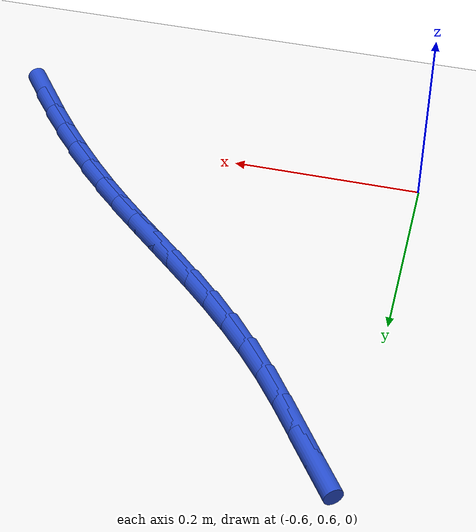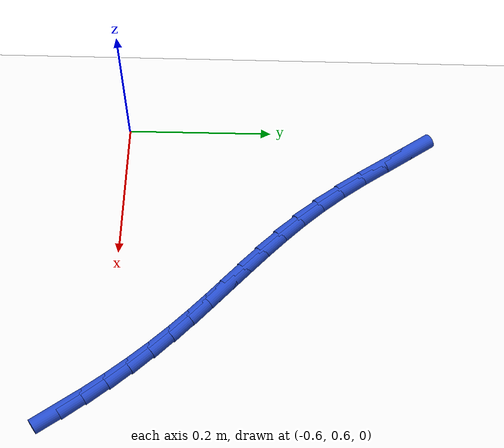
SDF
<sdf version="1.6">
 <world name="default">
  <model name="ground_plane">
   <static>1</static>
   <link name="link">
    <collision name="collision">
     <geometry><plane><normal>0 0 1</normal><size>100 100</size></plane></geometry>
     <surface><friction><ode><mu>100</mu><mu2>50</mu2></ode></friction></surface>
    </collision>
    <visual name="visual">
     <cast_shadows>0</cast_shadows>
     <geometry><plane><normal>0 0 1</normal><size>100 100</size></plane></geometry>
     <material>
      <script><uri>file://media/materials/scripts/gazebo.material</uri><name>Gazebo/WhiteGlow</name></script>
     </material>
    </visual>
   </link>
  </model>
  <model name="line">
   <link name="link_17">
    <pose>-0.17157981729613575 0.5499499537575293 0.01 0 1.57 -0.9487420032350163</pose>
    <collision name="collision">
     <geometry><cylinder><radius>0.01</radius><length>0.08</length></cylinder></geometry>
    </collision>
    <visual name="visual">
     <material>
      <script><name>Gazebo/Blue</name><uri>file://media/materials/scripts/gazebo.material</uri></script>
     </material>
     <geometry><cylinder><radius>0.01</radius><length>0.08</length></cylinder></geometry>
    </visual>
   </link>
   <link name="link_18">
    <pose>-0.19166809709365823 0.5779664978394363 0.01 0 1.57 -0.9151907084023931</pose>
    <collision name="collision">
     <geometry><cylinder><radius>0.01</radius><length>0.08</length></cylinder></geometry>
    </collision>
    <visual name="visual">
     <material>
      <script><name>Gazebo/Blue</name><uri>file://media/materials/scripts/gazebo.material</uri></script>
     </material>
     <geometry><cylinder><radius>0.01</radius><length>0.08</length></cylinder></geometry>
    </visual>
   </link>
   <link name="link_19">
    <pose>-0.21258396520670086 0.6051621911523204 0.01 0 1.57 -0.8815035611328907</pose>
    <collision name="collision">
     <geometry><cylinder><radius>0.01</radius><length>0.08</length></cylinder></geometry>
    </collision>
    <visual name="visual">
     <material>
      <script><name>Gazebo/Blue</name><uri>file://media/materials/scripts/gazebo.material</uri></script>
     </material>
     <geometry><cylinder><radius>0.01</radius><length>0.08</length></cylinder></geometry>
    </visual>
   </link>
   <link name="link_20">
    <pose>-0.234273050768583 0.631479176140621 0.01 0 1.57 -0.8475192089895005</pose>
    <collision name="collision">
     <geometry><cylinder><radius>0.01</radius><length>0.08</length></cylinder></geometry>
    </collision>
    <visual name="visual">
     <material>
      <script><name>Gazebo/Blue</name><uri>file://media/materials/scripts/gazebo.material</uri></script>
     </material>
     <geometry><cylinder><radius>0.01</radius><length>0.08</length></cylinder></geometry>
    </visual>
   </link>
   <link name="link_21">
    <pose>-0.2566809829126238 0.6568595952487771 0.01 0 1.57 -0.8130698172614506</pose>
    <collision name="collision">
     <geometry><cylinder><radius>0.01</radius><length>0.08</length></cylinder></geometry>
    </collision>
    <visual name="visual">
     <material>
      <script><name>Gazebo/Blue</name><uri>file://media/materials/scripts/gazebo.material</uri></script>
     </material>
     <geometry><cylinder><radius>0.01</radius><length>0.08</length></cylinder></geometry>
    </visual>
   </link>
   <link name="link_22">
    <pose>-0.2797533907721429 0.6812455909212283 0.01 0 1.57 -0.7788516701471598</pose>
    <collision name="collision">
     <geometry><cylinder><radius>0.01</radius><length>0.08</length></cylinder></geometry>
    </collision>
    <visual name="visual">
     <material>
      <script><name>Gazebo/Blue</name><uri>file://media/materials/scripts/gazebo.material</uri></script>
     </material>
     <geometry><cylinder><radius>0.01</radius><length>0.08</length></cylinder></geometry>
    </visual>
   </link>
   <link name="link_23">
    <pose>-0.30342885097133065 0.7046130803685452 0.01 0 1.57 -0.7521788629473859</pose>
    <collision name="collision">
     <geometry><cylinder><radius>0.01</radius><length>0.08</length></cylinder></geometry>
    </collision>
    <visual name="visual">
     <material>
      <script><name>Gazebo/Blue</name><uri>file://media/materials/scripts/gazebo.material</uri></script>
     </material>
     <geometry><cylinder><radius>0.01</radius><length>0.08</length></cylinder></geometry>
    </visual>
   </link>
   <link name="link_24">
    <pose>-0.3275875242645439 0.727217736886143 0.01 0 1.57 -0.7371262131885831</pose>
    <collision name="collision">
     <geometry><cylinder><radius>0.01</radius><length>0.08</length></cylinder></geometry>
    </collision>
    <visual name="visual">
     <material>
      <script><name>Gazebo/Blue</name><uri>file://media/materials/scripts/gazebo.material</uri></script>
     </material>
     <geometry><cylinder><radius>0.01</radius><length>0.08</length></cylinder></geometry>
    </visual>
   </link>
   <link name="link_25">
    <pose>-0.3520807064051882 0.7494534694865063 0.01 0 1.57 -0.7339510638346028</pose>
    <collision name="collision">
     <geometry><cylinder><radius>0.01</radius><length>0.08</length></cylinder></geometry>
    </collision>
    <visual name="visual">
     <material>
      <script><name>Gazebo/Blue</name><uri>file://media/materials/scripts/gazebo.material</uri></script>
     </material>
     <geometry><cylinder><radius>0.01</radius><length>0.08</length></cylinder></geometry>
    </visual>
   </link>
   <link name="link_26">
    <pose>-0.3767594885159683 0.7717151671672501 0.01 0 1.57 -0.7425340094391835</pose>
    <collision name="collision">
     <geometry><cylinder><radius>0.01</radius><length>0.08</length></cylinder></geometry>
    </collision>
    <visual name="visual">
     <material>
      <script><name>Gazebo/Blue</name><uri>file://media/materials/scripts/gazebo.material</uri></script>
     </material>
     <geometry><cylinder><radius>0.01</radius><length>0.08</length></cylinder></geometry>
    </visual>
   </link>
   <link name="link_27">
    <pose>-0.4014749617195892 0.7943977189259896 0.01 0 1.57 -0.7624307895153013</pose>
    <collision name="collision">
     <geometry><cylinder><radius>0.01</radius><length>0.08</length></cylinder></geometry>
    </collision>
    <visual name="visual">
     <material>
      <script><name>Gazebo/Blue</name><uri>file://media/materials/scripts/gazebo.material</uri></script>
     </material>
     <geometry><cylinder><radius>0.01</radius><length>0.08</length></cylinder></geometry>
    </visual>
   </link>
   <link name="link_28">
    <pose>-0.42607821713875554 0.81789601376034 0.01 0 1.57 -0.7928759089515474</pose>
    <collision name="collision">
     <geometry><cylinder><radius>0.01</radius><length>0.08</length></cylinder></geometry>
    </collision>
    <visual name="visual">
     <material>
      <script><name>Gazebo/Blue</name><uri>file://media/materials/scripts/gazebo.material</uri></script>
     </material>
     <geometry><cylinder><radius>0.01</radius><length>0.08</length></cylinder></geometry>
    </visual>
   </link>
   <link name="link_29">
    <pose>-0.45042034589617175 0.8426049406679159 0.01 0 1.57 -0.8327759910491431</pose>
    <collision name="collision">
     <geometry><cylinder><radius>0.01</radius><length>0.08</length></cylinder></geometry>
    </collision>
    <visual name="visual">
     <material>
      <script><name>Gazebo/Blue</name><uri>file://media/materials/scripts/gazebo.material</uri></script>
     </material>
     <geometry><cylinder><radius>0.01</radius><length>0.08</length></cylinder></geometry>
    </visual>
   </link>
   <link name="link_30">
    <pose>-0.474352439114543 0.8689193886463328 0.01 0 1.57 -0.8807145200349252</pose>
    <collision name="collision">
     <geometry><cylinder><radius>0.01</radius><length>0.08</length></cylinder></geometry>
    </collision>
    <visual name="visual">
     <material>
      <script><name>Gazebo/Blue</name><uri>file://media/materials/scripts/gazebo.material</uri></script>
     </material>
     <geometry><cylinder><radius>0.01</radius><length>0.08</length></cylinder></geometry>
    </visual>
   </link>
   <link name="link_31">
    <pose>-0.4977255929850802 0.8972342282198725 0.01 0 1.57 -0.9294383873199956</pose>
    <collision name="collision">
     <geometry><cylinder><radius>0.01</radius><length>0.08</length></cylinder></geometry>
    </collision>
    <visual name="visual">
     <material>
      <script><name>Gazebo/Blue</name><uri>file://media/materials/scripts/gazebo.material</uri></script>
     </material>
     <geometry><cylinder><radius>0.01</radius><length>0.08</length></cylinder></geometry>
    </visual>
   </link>
   <link name="link_32">
    <pose>-0.5204620044180258 0.9276851870653086 0.01 0 1.57 -0.9600022607746695</pose>
    <collision name="collision">
     <geometry><cylinder><radius>0.01</radius><length>0.08</length></cylinder></geometry>
    </collision>
    <visual name="visual">
     <material>
      <script><name>Gazebo/Blue</name><uri>file://media/materials/scripts/gazebo.material</uri></script>
     </material>
     <geometry><cylinder><radius>0.01</radius><length>0.08</length></cylinder></geometry>
    </visual>
   </link>
   <link name="link_33">
    <pose>-0.5427337291826932 0.9594973250476403 0.01 0 1.57 -0.9706734466050098</pose>
    <collision name="collision">
     <geometry><cylinder><radius>0.01</radius><length>0.08</length></cylinder></geometry>
    </collision>
    <visual name="visual">
     <material>
      <script><name>Gazebo/Blue</name><uri>file://media/materials/scripts/gazebo.material</uri></script>
     </material>
     <geometry><cylinder><radius>0.01</radius><length>0.08</length></cylinder></geometry>
    </visual>
   </link>
   <link name="link_34">
    <pose>-0.5647676785250512 0.991695768689198 0.01 0 1.57 -0.9622782402436055</pose>
    <collision name="collision">
     <geometry><cylinder><radius>0.01</radius><length>0.08</length></cylinder></geometry>
    </collision>
    <visual name="visual">
     <material>
      <script><name>Gazebo/Blue</name><uri>file://media/materials/scripts/gazebo.material</uri></script>
     </material>
     <geometry><cylinder><radius>0.01</radius><length>0.08</length></cylinder></geometry>
    </visual>
   </link>
  </model>
 </world>
</sdf>
